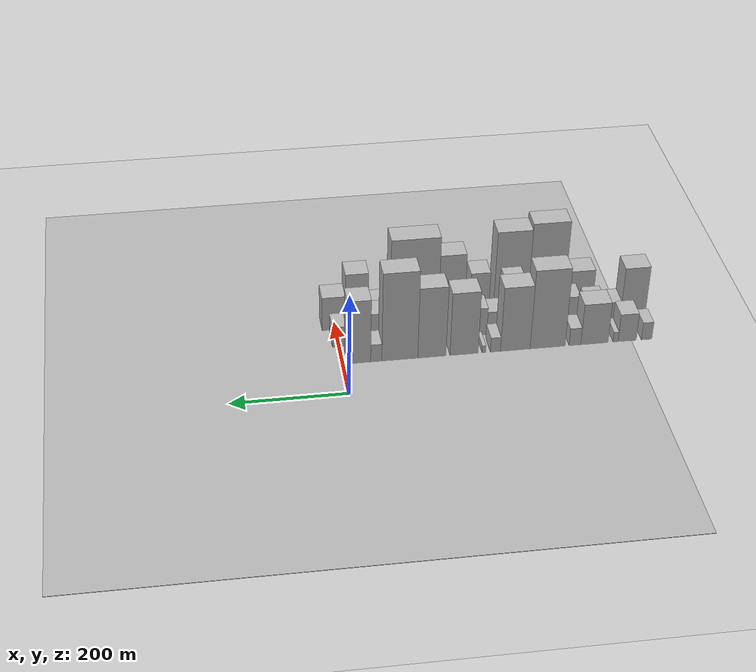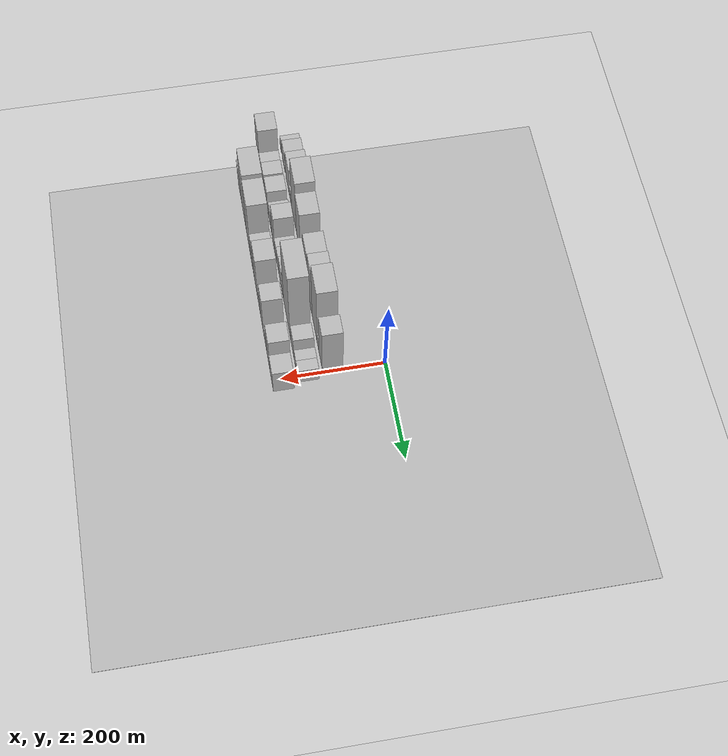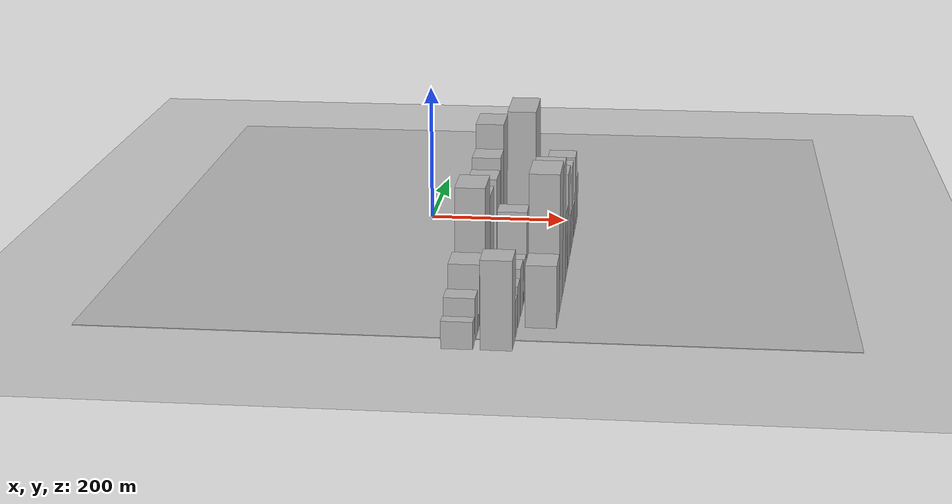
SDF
<sdf version="1.6">
 <world name="default">
  <include><name>ground_plane_1</name><uri>model://HANNAS_ground_plane</uri></include>
  <include>
   <name>ground_plane_2</name>
   <uri>model://HANNAS_ground_plane</uri>
   <pose>100 0 0  0 0 0</pose>
  </include>
  <model name="building_1">
   <static>1</static>
   <pose>100.0000 -526.7104 0 0.000000 0.000000 0.000000</pose>
   <link name="link">
    <pose>0 0 18.00 0 0 0</pose>
    <collision name="collision"><geometry><box><size>40.0000 18.5791 36.0000</size></box></geometry></collision>
    <visual name="visual">
     <cast_shadows>0</cast_shadows>
     <geometry><box><size>40.0000 18.5791 36.0000</size></box></geometry>
     <material>
      <script>
       <uri>model://HANNAS_wall/materials/scripts</uri>
       <uri>model://HANNAS_wall/materials/textures</uri>
       <name>vrc/HANNAS_wall</name>
      </script>
     </material>
    </visual>
   </link>
  </model>
  <model name="building_2">
   <static>1</static>
   <pose>100.0000 -492.3587 0 0.000000 0.000000 0.000000</pose>
   <link name="link">
    <pose>0 0 28.50 0 0 0</pose>
    <collision name="collision"><geometry><box><size>40.0000 32.1243 57.0000</size></box></geometry></collision>
    <visual name="visual">
     <cast_shadows>0</cast_shadows>
     <geometry><box><size>40.0000 32.1243 57.0000</size></box></geometry>
     <material>
      <script>
       <uri>model://HANNAS_wall/materials/scripts</uri>
       <uri>model://HANNAS_wall/materials/textures</uri>
       <name>vrc/HANNAS_wall</name>
      </script>
     </material>
    </visual>
   </link>
  </model>
  <model name="building_3">
   <static>1</static>
   <pose>100.0000 -471.9234 0 0.000000 0.000000 0.000000</pose>
   <link name="link">
    <pose>0 0 10.50 0 0 0</pose>
    <collision name="collision"><geometry><box><size>40.0000 8.7463 21.0000</size></box></geometry></collision>
    <visual name="visual">
     <cast_shadows>0</cast_shadows>
     <geometry><box><size>40.0000 8.7463 21.0000</size></box></geometry>
     <material>
      <script>
       <uri>model://HANNAS_wall/materials/scripts</uri>
       <uri>model://HANNAS_wall/materials/textures</uri>
       <name>vrc/HANNAS_wall</name>
      </script>
     </material>
    </visual>
   </link>
  </model>
  <model name="building_4">
   <static>1</static>
   <pose>100.0000 -434.7010 0 0.000000 0.000000 0.000000</pose>
   <link name="link">
    <pose>0 0 42.00 0 0 0</pose>
    <collision name="collision"><geometry><box><size>40.0000 47.6986 84.0000</size></box></geometry></collision>
    <visual name="visual">
     <cast_shadows>0</cast_shadows>
     <geometry><box><size>40.0000 47.6986 84.0000</size></box></geometry>
     <material>
      <script>
       <uri>model://HANNAS_wall/materials/scripts</uri>
       <uri>model://HANNAS_wall/materials/textures</uri>
       <name>vrc/HANNAS_wall</name>
      </script>
     </material>
    </visual>
   </link>
  </model>
  <model name="building_5">
   <static>1</static>
   <pose>100.0000 -400.5524 0 0.000000 0.000000 0.000000</pose>
   <link name="link">
    <pose>0 0 18.00 0 0 0</pose>
    <collision name="collision"><geometry><box><size>40.0000 20.5985 36.0000</size></box></geometry></collision>
    <visual name="visual">
     <cast_shadows>0</cast_shadows>
     <geometry><box><size>40.0000 20.5985 36.0000</size></box></geometry>
     <material>
      <script>
       <uri>model://HANNAS_wall/materials/scripts</uri>
       <uri>model://HANNAS_wall/materials/textures</uri>
       <name>vrc/HANNAS_wall</name>
      </script>
     </material>
    </visual>
   </link>
  </model>
  <model name="building_6">
   <static>1</static>
   <pose>100.0000 -352.6470 0 0.000000 0.000000 0.000000</pose>
   <link name="link">
    <pose>0 0 81.00 0 0 0</pose>
    <collision name="collision"><geometry><box><size>40.0000 61.2123 162.0000</size></box></geometry></collision>
    <visual name="visual">
     <cast_shadows>0</cast_shadows>
     <geometry><box><size>40.0000 61.2123 162.0000</size></box></geometry>
     <material>
      <script>
       <uri>model://HANNAS_wall/materials/scripts</uri>
       <uri>model://HANNAS_wall/materials/textures</uri>
       <name>vrc/HANNAS_wall</name>
      </script>
     </material>
    </visual>
   </link>
  </model>
  <model name="building_7">
   <static>1</static>
   <pose>100.0000 -296.2472 0 0.000000 0.000000 0.000000</pose>
   <link name="link">
    <pose>0 0 66.00 0 0 0</pose>
    <collision name="collision"><geometry><box><size>40.0000 51.5875 132.0000</size></box></geometry></collision>
    <visual name="visual">
     <cast_shadows>0</cast_shadows>
     <geometry><box><size>40.0000 51.5875 132.0000</size></box></geometry>
     <material>
      <script>
       <uri>model://HANNAS_wall/materials/scripts</uri>
       <uri>model://HANNAS_wall/materials/textures</uri>
       <name>vrc/HANNAS_wall</name>
      </script>
     </material>
    </visual>
   </link>
  </model>
  <model name="building_8">
   <static>1</static>
   <pose>100.0000 -261.6943 0 0.000000 0.000000 0.000000</pose>
   <link name="link">
    <pose>0 0 15.00 0 0 0</pose>
    <collision name="collision"><geometry><box><size>40.0000 17.5183 30.0000</size></box></geometry></collision>
    <visual name="visual">
     <cast_shadows>0</cast_shadows>
     <geometry><box><size>40.0000 17.5183 30.0000</size></box></geometry>
     <material>
      <script>
       <uri>model://HANNAS_wall/materials/scripts</uri>
       <uri>model://HANNAS_wall/materials/textures</uri>
       <name>vrc/HANNAS_wall</name>
      </script>
     </material>
    </visual>
   </link>
  </model>
  <model name="building_9">
   <static>1</static>
   <pose>100.0000 -241.7813 0 0.000000 0.000000 0.000000</pose>
   <link name="link">
    <pose>0 0 7.50 0 0 0</pose>
    <collision name="collision"><geometry><box><size>40.0000 6.3077 15.0000</size></box></geometry></collision>
    <visual name="visual">
     <cast_shadows>0</cast_shadows>
     <geometry><box><size>40.0000 6.3077 15.0000</size></box></geometry>
     <material>
      <script>
       <uri>model://HANNAS_wall/materials/scripts</uri>
       <uri>model://HANNAS_wall/materials/textures</uri>
       <name>vrc/HANNAS_wall</name>
      </script>
     </material>
    </visual>
   </link>
  </model>
  <model name="building_10">
   <static>1</static>
   <pose>100.0000 -207.3583 0 0.000000 0.000000 0.000000</pose>
   <link name="link">
    <pose>0 0 64.50 0 0 0</pose>
    <collision name="collision"><geometry><box><size>40.0000 48.5383 129.0000</size></box></geometry></collision>
    <visual name="visual">
     <cast_shadows>0</cast_shadows>
     <geometry><box><size>40.0000 48.5383 129.0000</size></box></geometry>
     <material>
      <script>
       <uri>model://HANNAS_wall/materials/scripts</uri>
       <uri>model://HANNAS_wall/materials/textures</uri>
       <name>vrc/HANNAS_wall</name>
      </script>
     </material>
    </visual>
   </link>
  </model>
  <model name="building_11">
   <static>1</static>
   <pose>100.0000 -151.8537 0 0.000000 0.000000 0.000000</pose>
   <link name="link">
    <pose>0 0 72.00 0 0 0</pose>
    <collision name="collision"><geometry><box><size>40.0000 48.4710 144.0000</size></box></geometry></collision>
    <visual name="visual">
     <cast_shadows>0</cast_shadows>
     <geometry><box><size>40.0000 48.4710 144.0000</size></box></geometry>
     <material>
      <script>
       <uri>model://HANNAS_wall/materials/scripts</uri>
       <uri>model://HANNAS_wall/materials/textures</uri>
       <name>vrc/HANNAS_wall</name>
      </script>
     </material>
    </visual>
   </link>
  </model>
  <model name="building_12">
   <static>1</static>
   <pose>100.0000 -96.7841 0 0.000000 0.000000 0.000000</pose>
   <link name="link">
    <pose>0 0 90.00 0 0 0</pose>
    <collision name="collision"><geometry><box><size>40.0000 61.6681 180.0000</size></box></geometry></collision>
    <visual name="visual">
     <cast_shadows>0</cast_shadows>
     <geometry><box><size>40.0000 61.6681 180.0000</size></box></geometry>
     <material>
      <script>
       <uri>model://HANNAS_wall/materials/scripts</uri>
       <uri>model://HANNAS_wall/materials/textures</uri>
       <name>vrc/HANNAS_wall</name>
      </script>
     </material>
    </visual>
   </link>
  </model>
  <model name="building_13">
   <static>1</static>
   <pose>100.0000 -56.4498 0 0.000000 0.000000 0.000000</pose>
   <link name="link">
    <pose>0 0 18.00 0 0 0</pose>
    <collision name="collision"><geometry><box><size>40.0000 19.0006 36.0000</size></box></geometry></collision>
    <visual name="visual">
     <cast_shadows>0</cast_shadows>
     <geometry><box><size>40.0000 19.0006 36.0000</size></box></geometry>
     <material>
      <script>
       <uri>model://HANNAS_wall/materials/scripts</uri>
       <uri>model://HANNAS_wall/materials/textures</uri>
       <name>vrc/HANNAS_wall</name>
      </script>
     </material>
    </visual>
   </link>
  </model>
  <model name="building_14">
   <static>1</static>
   <pose>100.0000 -26.9856 0 0.000000 0.000000 0.000000</pose>
   <link name="link">
    <pose>0 0 64.50 0 0 0</pose>
    <collision name="collision"><geometry><box><size>40.0000 39.9278 129.0000</size></box></geometry></collision>
    <visual name="visual">
     <cast_shadows>0</cast_shadows>
     <geometry><box><size>40.0000 39.9278 129.0000</size></box></geometry>
     <material>
      <script>
       <uri>model://HANNAS_wall/materials/scripts</uri>
       <uri>model://HANNAS_wall/materials/textures</uri>
       <name>vrc/HANNAS_wall</name>
      </script>
     </material>
    </visual>
   </link>
  </model>
  <model name="building_31">
   <static>1</static>
   <pose>149.0000 -513.9039 0 0.000000 0.000000 0.000000</pose>
   <link name="link">
    <pose>0 0 58.50 0 0 0</pose>
    <collision name="collision"><geometry><box><size>40.0000 44.1923 117.0000</size></box></geometry></collision>
    <visual name="visual">
     <cast_shadows>0</cast_shadows>
     <geometry><box><size>40.0000 44.1923 117.0000</size></box></geometry>
     <material>
      <script>
       <uri>model://HANNAS_wall/materials/scripts</uri>
       <uri>model://HANNAS_wall/materials/textures</uri>
       <name>vrc/HANNAS_wall</name>
      </script>
     </material>
    </visual>
   </link>
  </model>
  <model name="building_32">
   <static>1</static>
   <pose>149.0000 -478.8391 0 0.000000 0.000000 0.000000</pose>
   <link name="link">
    <pose>0 0 24.00 0 0 0</pose>
    <collision name="collision"><geometry><box><size>40.0000 25.9372 48.0000</size></box></geometry></collision>
    <visual name="visual">
     <cast_shadows>0</cast_shadows>
     <geometry><box><size>40.0000 25.9372 48.0000</size></box></geometry>
     <material>
      <script>
       <uri>model://HANNAS_wall/materials/scripts</uri>
       <uri>model://HANNAS_wall/materials/textures</uri>
       <name>vrc/HANNAS_wall</name>
      </script>
     </material>
    </visual>
   </link>
  </model>
  <model name="building_33">
   <static>1</static>
   <pose>149.0000 -444.4173 0 0.000000 0.000000 0.000000</pose>
   <link name="link">
    <pose>0 0 28.50 0 0 0</pose>
    <collision name="collision"><geometry><box><size>40.0000 32.9065 57.0000</size></box></geometry></collision>
    <visual name="visual">
     <cast_shadows>0</cast_shadows>
     <geometry><box><size>40.0000 32.9065 57.0000</size></box></geometry>
     <material>
      <script>
       <uri>model://HANNAS_wall/materials/scripts</uri>
       <uri>model://HANNAS_wall/materials/textures</uri>
       <name>vrc/HANNAS_wall</name>
      </script>
     </material>
    </visual>
   </link>
  </model>
  <model name="building_34">
   <static>1</static>
   <pose>149.0000 -398.9525 0 0.000000 0.000000 0.000000</pose>
   <link name="link">
    <pose>0 0 33.00 0 0 0</pose>
    <collision name="collision"><geometry><box><size>40.0000 38.0232 66.0000</size></box></geometry></collision>
    <visual name="visual">
     <cast_shadows>0</cast_shadows>
     <geometry><box><size>40.0000 38.0232 66.0000</size></box></geometry>
     <material>
      <script>
       <uri>model://HANNAS_wall/materials/scripts</uri>
       <uri>model://HANNAS_wall/materials/textures</uri>
       <name>vrc/HANNAS_wall</name>
      </script>
     </material>
    </visual>
   </link>
  </model>
  <model name="building_35">
   <static>1</static>
   <pose>149.0000 -371.0271 0 0.000000 0.000000 0.000000</pose>
   <link name="link">
    <pose>0 0 9.00 0 0 0</pose>
    <collision name="collision"><geometry><box><size>40.0000 7.8276 18.0000</size></box></geometry></collision>
    <visual name="visual">
     <cast_shadows>0</cast_shadows>
     <geometry><box><size>40.0000 7.8276 18.0000</size></box></geometry>
     <material>
      <script>
       <uri>model://HANNAS_wall/materials/scripts</uri>
       <uri>model://HANNAS_wall/materials/textures</uri>
       <name>vrc/HANNAS_wall</name>
      </script>
     </material>
    </visual>
   </link>
  </model>
  <model name="building_36">
   <static>1</static>
   <pose>149.0000 -347.7854 0 0.000000 0.000000 0.000000</pose>
   <link name="link">
    <pose>0 0 28.50 0 0 0</pose>
    <collision name="collision"><geometry><box><size>40.0000 30.6557 57.0000</size></box></geometry></collision>
    <visual name="visual">
     <cast_shadows>0</cast_shadows>
     <geometry><box><size>40.0000 30.6557 57.0000</size></box></geometry>
     <material>
      <script>
       <uri>model://HANNAS_wall/materials/scripts</uri>
       <uri>model://HANNAS_wall/materials/textures</uri>
       <name>vrc/HANNAS_wall</name>
      </script>
     </material>
    </visual>
   </link>
  </model>
  <model name="building_37">
   <static>1</static>
   <pose>149.0000 -325.7199 0 0.000000 0.000000 0.000000</pose>
   <link name="link">
    <pose>0 0 13.50 0 0 0</pose>
    <collision name="collision"><geometry><box><size>40.0000 13.4754 27.0000</size></box></geometry></collision>
    <visual name="visual">
     <cast_shadows>0</cast_shadows>
     <geometry><box><size>40.0000 13.4754 27.0000</size></box></geometry>
     <material>
      <script>
       <uri>model://HANNAS_wall/materials/scripts</uri>
       <uri>model://HANNAS_wall/materials/textures</uri>
       <name>vrc/HANNAS_wall</name>
      </script>
     </material>
    </visual>
   </link>
  </model>
  <model name="building_38">
   <static>1</static>
   <pose>149.0000 -301.5186 0 0.000000 0.000000 0.000000</pose>
   <link name="link">
    <pose>0 0 55.50 0 0 0</pose>
    <collision name="collision"><geometry><box><size>40.0000 34.9273 111.0000</size></box></geometry></collision>
    <visual name="visual">
     <cast_shadows>0</cast_shadows>
     <geometry><box><size>40.0000 34.9273 111.0000</size></box></geometry>
     <material>
      <script>
       <uri>model://HANNAS_wall/materials/scripts</uri>
       <uri>model://HANNAS_wall/materials/textures</uri>
       <name>vrc/HANNAS_wall</name>
      </script>
     </material>
    </visual>
   </link>
  </model>
  <model name="building_39">
   <static>1</static>
   <pose>149.0000 -270.4646 0 0.000000 0.000000 0.000000</pose>
   <link name="link">
    <pose>0 0 24.00 0 0 0</pose>
    <collision name="collision"><geometry><box><size>40.0000 27.1806 48.0000</size></box></geometry></collision>
    <visual name="visual">
     <cast_shadows>0</cast_shadows>
     <geometry><box><size>40.0000 27.1806 48.0000</size></box></geometry>
     <material>
      <script>
       <uri>model://HANNAS_wall/materials/scripts</uri>
       <uri>model://HANNAS_wall/materials/textures</uri>
       <name>vrc/HANNAS_wall</name>
      </script>
     </material>
    </visual>
   </link>
  </model>
  <model name="building_40">
   <static>1</static>
   <pose>149.0000 -241.8862 0 0.000000 0.000000 0.000000</pose>
   <link name="link">
    <pose>0 0 28.50 0 0 0</pose>
    <collision name="collision"><geometry><box><size>40.0000 29.9763 57.0000</size></box></geometry></collision>
    <visual name="visual">
     <cast_shadows>0</cast_shadows>
     <geometry><box><size>40.0000 29.9763 57.0000</size></box></geometry>
     <material>
      <script>
       <uri>model://HANNAS_wall/materials/scripts</uri>
       <uri>model://HANNAS_wall/materials/textures</uri>
       <name>vrc/HANNAS_wall</name>
      </script>
     </material>
    </visual>
   </link>
  </model>
  <model name="building_41">
   <static>1</static>
   <pose>149.0000 -208.3323 0 0.000000 0.000000 0.000000</pose>
   <link name="link">
    <pose>0 0 34.50 0 0 0</pose>
    <collision name="collision"><geometry><box><size>40.0000 37.1314 69.0000</size></box></geometry></collision>
    <visual name="visual">
     <cast_shadows>0</cast_shadows>
     <geometry><box><size>40.0000 37.1314 69.0000</size></box></geometry>
     <material>
      <script>
       <uri>model://HANNAS_wall/materials/scripts</uri>
       <uri>model://HANNAS_wall/materials/textures</uri>
       <name>vrc/HANNAS_wall</name>
      </script>
     </material>
    </visual>
   </link>
  </model>
  <model name="building_42">
   <static>1</static>
   <pose>149.0000 -179.9812 0 0.000000 0.000000 0.000000</pose>
   <link name="link">
    <pose>0 0 18.00 0 0 0</pose>
    <collision name="collision"><geometry><box><size>40.0000 19.5709 36.0000</size></box></geometry></collision>
    <visual name="visual">
     <cast_shadows>0</cast_shadows>
     <geometry><box><size>40.0000 19.5709 36.0000</size></box></geometry>
     <material>
      <script>
       <uri>model://HANNAS_wall/materials/scripts</uri>
       <uri>model://HANNAS_wall/materials/textures</uri>
       <name>vrc/HANNAS_wall</name>
      </script>
     </material>
    </visual>
   </link>
  </model>
  <model name="building_43">
   <static>1</static>
   <pose>149.0000 -128.4672 0 0.000000 0.000000 0.000000</pose>
   <link name="link">
    <pose>0 0 105.00 0 0 0</pose>
    <collision name="collision"><geometry><box><size>40.0000 83.4570 210.0000</size></box></geometry></collision>
    <visual name="visual">
     <cast_shadows>0</cast_shadows>
     <geometry><box><size>40.0000 83.4570 210.0000</size></box></geometry>
     <material>
      <script>
       <uri>model://HANNAS_wall/materials/scripts</uri>
       <uri>model://HANNAS_wall/materials/textures</uri>
       <name>vrc/HANNAS_wall</name>
      </script>
     </material>
    </visual>
   </link>
  </model>
  <model name="building_44">
   <static>1</static>
   <pose>149.0000 -81.1608 0 0.000000 0.000000 0.000000</pose>
   <link name="link">
    <pose>0 0 13.50 0 0 0</pose>
    <collision name="collision"><geometry><box><size>40.0000 11.1558 27.0000</size></box></geometry></collision>
    <visual name="visual">
     <cast_shadows>0</cast_shadows>
     <geometry><box><size>40.0000 11.1558 27.0000</size></box></geometry>
     <material>
      <script>
       <uri>model://HANNAS_wall/materials/scripts</uri>
       <uri>model://HANNAS_wall/materials/textures</uri>
       <name>vrc/HANNAS_wall</name>
      </script>
     </material>
    </visual>
   </link>
  </model>
  <model name="building_45">
   <static>1</static>
   <pose>149.0000 -58.9629 0 0.000000 0.000000 0.000000</pose>
   <link name="link">
    <pose>0 0 31.50 0 0 0</pose>
    <collision name="collision"><geometry><box><size>40.0000 33.2399 63.0000</size></box></geometry></collision>
    <visual name="visual">
     <cast_shadows>0</cast_shadows>
     <geometry><box><size>40.0000 33.2399 63.0000</size></box></geometry>
     <material>
      <script>
       <uri>model://HANNAS_wall/materials/scripts</uri>
       <uri>model://HANNAS_wall/materials/textures</uri>
       <name>vrc/HANNAS_wall</name>
      </script>
     </material>
    </visual>
   </link>
  </model>
  <model name="building_46">
   <static>1</static>
   <pose>149.0000 -22.9066 0 0.000000 0.000000 0.000000</pose>
   <link name="link">
    <pose>0 0 21.00 0 0 0</pose>
    <collision name="collision"><geometry><box><size>40.0000 22.8728 42.0000</size></box></geometry></collision>
    <visual name="visual">
     <cast_shadows>0</cast_shadows>
     <geometry><box><size>40.0000 22.8728 42.0000</size></box></geometry>
     <material>
      <script>
       <uri>model://HANNAS_wall/materials/scripts</uri>
       <uri>model://HANNAS_wall/materials/textures</uri>
       <name>vrc/HANNAS_wall</name>
      </script>
     </material>
    </visual>
   </link>
  </model>
  <model name="building_47">
   <static>1</static>
   <pose>149.0000 0.3282 0 0.000000 0.000000 0.000000</pose>
   <link name="link">
    <pose>0 0 21.00 0 0 0</pose>
    <collision name="collision"><geometry><box><size>40.0000 23.5967 42.0000</size></box></geometry></collision>
    <visual name="visual">
     <cast_shadows>0</cast_shadows>
     <geometry><box><size>40.0000 23.5967 42.0000</size></box></geometry>
     <material>
      <script>
       <uri>model://HANNAS_wall/materials/scripts</uri>
       <uri>model://HANNAS_wall/materials/textures</uri>
       <name>vrc/HANNAS_wall</name>
      </script>
     </material>
    </visual>
   </link>
  </model>
  <model name="building_61">
   <static>1</static>
   <pose>198.0000 -430.6060 0 0.000000 0.000000 0.000000</pose>
   <link name="link">
    <pose>0 0 42.00 0 0 0</pose>
    <collision name="collision"><geometry><box><size>40.0000 48.9293 84.0000</size></box></geometry></collision>
    <visual name="visual">
     <cast_shadows>0</cast_shadows>
     <geometry><box><size>40.0000 48.9293 84.0000</size></box></geometry>
     <material>
      <script>
       <uri>model://HANNAS_wall/materials/scripts</uri>
       <uri>model://HANNAS_wall/materials/textures</uri>
       <name>vrc/HANNAS_wall</name>
      </script>
     </material>
    </visual>
   </link>
  </model>
  <model name="building_62">
   <static>1</static>
   <pose>198.0000 -370.6193 0 0.000000 0.000000 0.000000</pose>
   <link name="link">
    <pose>0 0 94.50 0 0 0</pose>
    <collision name="collision"><geometry><box><size>40.0000 65.0442 189.0000</size></box></geometry></collision>
    <visual name="visual">
     <cast_shadows>0</cast_shadows>
     <geometry><box><size>40.0000 65.0442 189.0000</size></box></geometry>
     <material>
      <script>
       <uri>model://HANNAS_wall/materials/scripts</uri>
       <uri>model://HANNAS_wall/materials/textures</uri>
       <name>vrc/HANNAS_wall</name>
      </script>
     </material>
    </visual>
   </link>
  </model>
  <model name="building_63">
   <static>1</static>
   <pose>198.0000 -307.6631 0 0.000000 0.000000 0.000000</pose>
   <link name="link">
    <pose>0 0 88.50 0 0 0</pose>
    <collision name="collision"><geometry><box><size>40.0000 60.8682 177.0000</size></box></geometry></collision>
    <visual name="visual">
     <cast_shadows>0</cast_shadows>
     <geometry><box><size>40.0000 60.8682 177.0000</size></box></geometry>
     <material>
      <script>
       <uri>model://HANNAS_wall/materials/scripts</uri>
       <uri>model://HANNAS_wall/materials/textures</uri>
       <name>vrc/HANNAS_wall</name>
      </script>
     </material>
    </visual>
   </link>
  </model>
  <model name="building_64">
   <static>1</static>
   <pose>198.0000 -273.2145 0 0.000000 0.000000 0.000000</pose>
   <link name="link">
    <pose>0 0 9.00 0 0 0</pose>
    <collision name="collision"><geometry><box><size>40.0000 8.0289 18.0000</size></box></geometry></collision>
    <visual name="visual">
     <cast_shadows>0</cast_shadows>
     <geometry><box><size>40.0000 8.0289 18.0000</size></box></geometry>
     <material>
      <script>
       <uri>model://HANNAS_wall/materials/scripts</uri>
       <uri>model://HANNAS_wall/materials/textures</uri>
       <name>vrc/HANNAS_wall</name>
      </script>
     </material>
    </visual>
   </link>
  </model>
  <model name="building_65">
   <static>1</static>
   <pose>198.0000 -252.0980 0 0.000000 0.000000 0.000000</pose>
   <link name="link">
    <pose>0 0 48.00 0 0 0</pose>
    <collision name="collision"><geometry><box><size>40.0000 34.2040 96.0000</size></box></geometry></collision>
    <visual name="visual">
     <cast_shadows>0</cast_shadows>
     <geometry><box><size>40.0000 34.2040 96.0000</size></box></geometry>
     <material>
      <script>
       <uri>model://HANNAS_wall/materials/scripts</uri>
       <uri>model://HANNAS_wall/materials/textures</uri>
       <name>vrc/HANNAS_wall</name>
      </script>
     </material>
    </visual>
   </link>
  </model>
  <model name="building_66">
   <static>1</static>
   <pose>198.0000 -230.4330 0 0.000000 0.000000 0.000000</pose>
   <link name="link">
    <pose>0 0 10.50 0 0 0</pose>
    <collision name="collision"><geometry><box><size>40.0000 9.1260 21.0000</size></box></geometry></collision>
    <visual name="visual">
     <cast_shadows>0</cast_shadows>
     <geometry><box><size>40.0000 9.1260 21.0000</size></box></geometry>
     <material>
      <script>
       <uri>model://HANNAS_wall/materials/scripts</uri>
       <uri>model://HANNAS_wall/materials/textures</uri>
       <name>vrc/HANNAS_wall</name>
      </script>
     </material>
    </visual>
   </link>
  </model>
  <model name="building_67">
   <static>1</static>
   <pose>198.0000 -202.3218 0 0.000000 0.000000 0.000000</pose>
   <link name="link">
    <pose>0 0 69.00 0 0 0</pose>
    <collision name="collision"><geometry><box><size>40.0000 47.0966 138.0000</size></box></geometry></collision>
    <visual name="visual">
     <cast_shadows>0</cast_shadows>
     <geometry><box><size>40.0000 47.0966 138.0000</size></box></geometry>
     <material>
      <script>
       <uri>model://HANNAS_wall/materials/scripts</uri>
       <uri>model://HANNAS_wall/materials/textures</uri>
       <name>vrc/HANNAS_wall</name>
      </script>
     </material>
    </visual>
   </link>
  </model>
  <model name="building_68">
   <static>1</static>
   <pose>198.0000 -154.3235 0 0.000000 0.000000 0.000000</pose>
   <link name="link">
    <pose>0 0 30.00 0 0 0</pose>
    <collision name="collision"><geometry><box><size>40.0000 30.8999 60.0000</size></box></geometry></collision>
    <visual name="visual">
     <cast_shadows>0</cast_shadows>
     <geometry><box><size>40.0000 30.8999 60.0000</size></box></geometry>
     <material>
      <script>
       <uri>model://HANNAS_wall/materials/scripts</uri>
       <uri>model://HANNAS_wall/materials/textures</uri>
       <name>vrc/HANNAS_wall</name>
      </script>
     </material>
    </visual>
   </link>
  </model>
  <model name="building_69">
   <static>1</static>
   <pose>198.0000 -119.7338 0 0.000000 0.000000 0.000000</pose>
   <link name="link">
    <pose>0 0 61.50 0 0 0</pose>
    <collision name="collision"><geometry><box><size>40.0000 38.2794 123.0000</size></box></geometry></collision>
    <visual name="visual">
     <cast_shadows>0</cast_shadows>
     <geometry><box><size>40.0000 38.2794 123.0000</size></box></geometry>
     <material>
      <script>
       <uri>model://HANNAS_wall/materials/scripts</uri>
       <uri>model://HANNAS_wall/materials/textures</uri>
       <name>vrc/HANNAS_wall</name>
      </script>
     </material>
    </visual>
   </link>
  </model>
  <model name="building_70">
   <static>1</static>
   <pose>198.0000 -94.6216 0 0.000000 0.000000 0.000000</pose>
   <link name="link">
    <pose>0 0 12.00 0 0 0</pose>
    <collision name="collision"><geometry><box><size>40.0000 11.9450 24.0000</size></box></geometry></collision>
    <visual name="visual">
     <cast_shadows>0</cast_shadows>
     <geometry><box><size>40.0000 11.9450 24.0000</size></box></geometry>
     <material>
      <script>
       <uri>model://HANNAS_wall/materials/scripts</uri>
       <uri>model://HANNAS_wall/materials/textures</uri>
       <name>vrc/HANNAS_wall</name>
      </script>
     </material>
    </visual>
   </link>
  </model>
  <model name="building_71">
   <static>1</static>
   <pose>198.0000 -70.8648 0 0.000000 0.000000 0.000000</pose>
   <link name="link">
    <pose>0 0 25.50 0 0 0</pose>
    <collision name="collision"><geometry><box><size>40.0000 27.5685 51.0000</size></box></geometry></collision>
    <visual name="visual">
     <cast_shadows>0</cast_shadows>
     <geometry><box><size>40.0000 27.5685 51.0000</size></box></geometry>
     <material>
      <script>
       <uri>model://HANNAS_wall/materials/scripts</uri>
       <uri>model://HANNAS_wall/materials/textures</uri>
       <name>vrc/HANNAS_wall</name>
      </script>
     </material>
    </visual>
   </link>
  </model>
  <model name="building_72">
   <static>1</static>
   <pose>198.0000 -36.9192 0 0.000000 0.000000 0.000000</pose>
   <link name="link">
    <pose>0 0 57.00 0 0 0</pose>
    <collision name="collision"><geometry><box><size>40.0000 40.3227 114.0000</size></box></geometry></collision>
    <visual name="visual">
     <cast_shadows>0</cast_shadows>
     <geometry><box><size>40.0000 40.3227 114.0000</size></box></geometry>
     <material>
      <script>
       <uri>model://HANNAS_wall/materials/scripts</uri>
       <uri>model://HANNAS_wall/materials/textures</uri>
       <name>vrc/HANNAS_wall</name>
      </script>
     </material>
    </visual>
   </link>
  </model>
  <model name="building_73">
   <static>1</static>
   <pose>198.0000 3.4808 0 0.000000 0.000000 0.000000</pose>
   <link name="link">
    <pose>0 0 34.50 0 0 0</pose>
    <collision name="collision"><geometry><box><size>40.0000 40.4773 69.0000</size></box></geometry></collision>
    <visual name="visual">
     <cast_shadows>0</cast_shadows>
     <geometry><box><size>40.0000 40.4773 69.0000</size></box></geometry>
     <material>
      <script>
       <uri>model://HANNAS_wall/materials/scripts</uri>
       <uri>model://HANNAS_wall/materials/textures</uri>
       <name>vrc/HANNAS_wall</name>
      </script>
     </material>
    </visual>
   </link>
  </model>
 </world>
</sdf>
